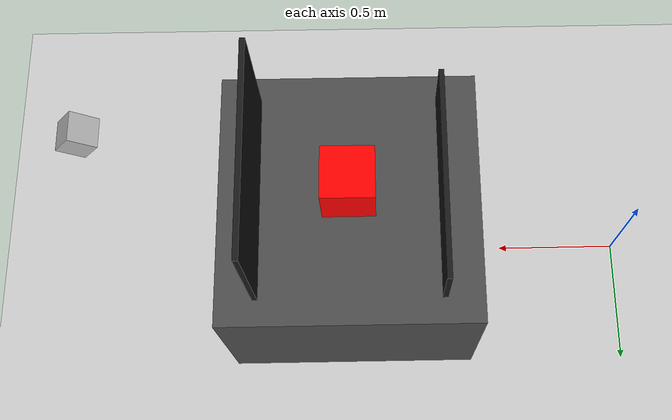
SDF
<sdf version="1.6">
  <world name="obstacle_world">
    <physics name="1ms" type="ode">
      <max_step_size>0.004</max_step_size>
      <real_time_update_rate>250</real_time_update_rate>
    </physics>
    <plugin filename="libignition-gazebo-physics-system.so" name="ignition::gazebo::systems::Physics"/>
    <plugin filename="libignition-gazebo-user-commands-system.so" name="ignition::gazebo::systems::UserCommands"/>
    <plugin filename="libignition-gazebo-scene-broadcaster-system.so" name="ignition::gazebo::systems::SceneBroadcaster"/>

    <light type="directional" name="sun">
      <cast_shadows>true</cast_shadows>
      <pose>0 0 10 0 0 0</pose>
      <diffuse>0.8 0.8 0.8 1</diffuse>
      <specular>0.2 0.2 0.2 1</specular>
      <direction>-0.5 0.1 -0.9</direction>
    </light>

    <model name="ground_plane">
      <static>true</static>
      <link name="link">
        <collision name="collision"><geometry><plane><normal>0 0 1</normal><size>100 100</size></plane></geometry></collision>
        <visual name="visual"><geometry><plane><normal>0 0 1</normal><size>100 100</size></plane></geometry>
          <material><ambient>0.8 0.8 0.8 1</ambient><diffuse>0.8 0.8 0.8 1</diffuse></material>
        </visual>
      </link>
    </model>

    <model name="table">
      <static>true</static>
      <pose>1.15 0 0.35 0 0 0</pose>
      <link name="link">
        <visual name="visual">
          <geometry><box><size>1.0 1.0 0.7</size></box></geometry>
          <material><ambient>0.3 0.3 0.3 1</ambient><diffuse>0.3 0.3 0.3 1</diffuse></material>
        </visual>
        <collision name="collision"><geometry><box><size>1.0 1.0 0.7</size></box></geometry></collision>
      </link>
    </model>

    <model name="front_wall">
      <static>true</static>
      <pose>0.8 0 0.8 0 0 0</pose>
      <link name="link">
        <visual name="visual">
          <geometry><box><size>0.02 0.8 0.3</size></box></geometry>
          <material><ambient>0.1 0.1 0.1 1</ambient><diffuse>0.1 0.1 0.1 1</diffuse></material>
        </visual>
        <collision name="collision"><geometry><box><size>0.02 0.8 0.8</size></box></geometry></collision>
      </link>
    </model>

    <model name="back_wall">
      <static>true</static>
      <pose>1.5 0 0.8 0 0 0</pose>
      <link name="link">
        <visual name="visual">
          <geometry><box><size>0.02 0.8 0.8</size></box></geometry>
          <material><ambient>0.1 0.1 0.1 1</ambient><diffuse>0.1 0.1 0.1 1</diffuse></material>
        </visual>
        <collision name="collision"><geometry><box><size>0.02 0.8 0.8</size></box></geometry></collision>
      </link>
    </model>

    <model name="hidden_red_box">
      <static>true</static>
      <pose>1.15 0.0 0.85 0 0 0</pose>
      <link name="link">
        <visual name="visual">
          <geometry><box><size>0.2 0.2 0.2</size></box></geometry>
          <material><ambient>1 0 0 1</ambient><diffuse>1 0 0 1</diffuse></material>
        </visual>
        <collision name="collision"><geometry><box><size>0.1 0.1 0.1</size></box></geometry></collision>
      </link>
    </model>

    <model name="static_camera">
      <static>true</static>
      <pose>2.0 0 1.3 0 0.65 3.14159</pose>
      <link name="link">
        <visual name="visual">
          <geometry><box><size>0.1 0.1 0.1</size></box></geometry>
        </visual>
        <sensor name="static_depth_camera" type="depth_camera">
          <update_rate>10</update_rate>
          <topic>static_camera/depth_image</topic>
          <camera>
            <horizontal_fov>1.05</horizontal_fov>
            <image>
              <width>640</width>
              <height>480</height>
              <format>R_FLOAT32</format>
            </image>
            <clip>
              <near>0.1</near>
              <far>5.0</far>
            </clip>
          </camera>
        </sensor>
      </link>
    </model>
  </world>
</sdf>
